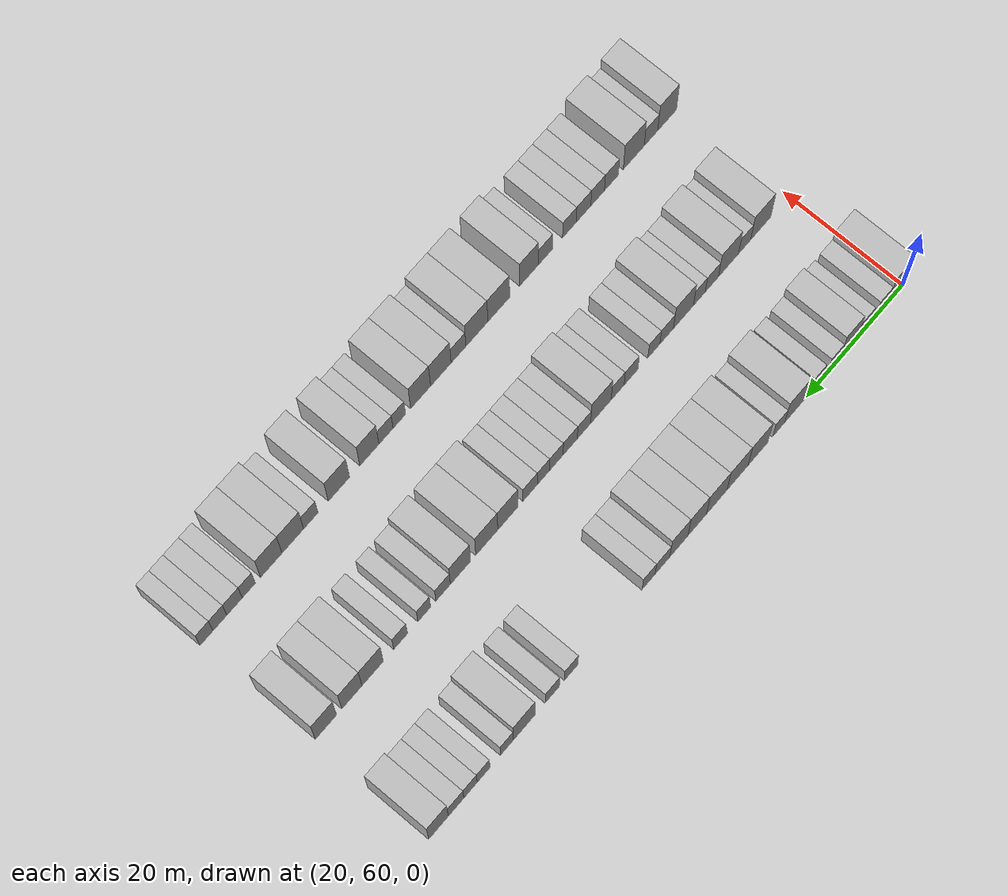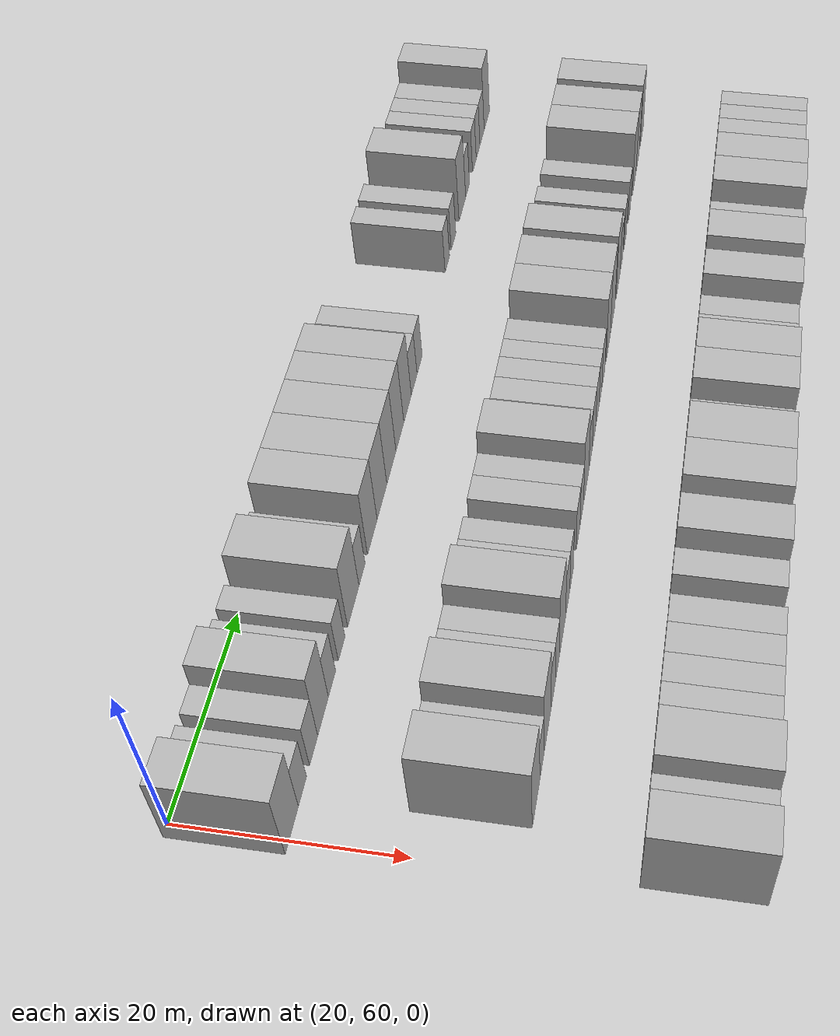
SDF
<sdf version="1.6">
 <world name="default">
  <model name="building_92">
   <static>1</static>
   <pose>25.0000 60.9548 0 0.000000 0.000000 0.000000</pose>
   <link name="link">
    <pose>0 0 4.50 0 0 0</pose>
    <collision name="collision"><geometry><box><size>10.0000 4.0776 9.0000</size></box></geometry></collision>
    <visual name="visual">
     <cast_shadows>0</cast_shadows>
     <geometry><box><size>10.0000 4.0776 9.0000</size></box></geometry>
     <material>
      <script>
       <uri>model://HANNAS_wall/materials/scripts</uri>
       <uri>model://HANNAS_wall/materials/textures</uri>
       <name>vrc/HANNAS_wall</name>
      </script>
     </material>
    </visual>
   </link>
  </model>
  <model name="building_93">
   <static>1</static>
   <pose>25.0000 64.3066 0 0.000000 0.000000 0.000000</pose>
   <link name="link">
    <pose>0 0 3.00 0 0 0</pose>
    <collision name="collision"><geometry><box><size>10.0000 2.6260 6.0000</size></box></geometry></collision>
    <visual name="visual">
     <cast_shadows>0</cast_shadows>
     <geometry><box><size>10.0000 2.6260 6.0000</size></box></geometry>
     <material>
      <script>
       <uri>model://HANNAS_wall/materials/scripts</uri>
       <uri>model://HANNAS_wall/materials/textures</uri>
       <name>vrc/HANNAS_wall</name>
      </script>
     </material>
    </visual>
   </link>
  </model>
  <model name="building_94">
   <static>1</static>
   <pose>25.0000 67.9862 0 0.000000 0.000000 0.000000</pose>
   <link name="link">
    <pose>0 0 3.00 0 0 0</pose>
    <collision name="collision"><geometry><box><size>10.0000 2.7333 6.0000</size></box></geometry></collision>
    <visual name="visual">
     <cast_shadows>0</cast_shadows>
     <geometry><box><size>10.0000 2.7333 6.0000</size></box></geometry>
     <material>
      <script>
       <uri>model://HANNAS_wall/materials/scripts</uri>
       <uri>model://HANNAS_wall/materials/textures</uri>
       <name>vrc/HANNAS_wall</name>
      </script>
     </material>
    </visual>
   </link>
  </model>
  <model name="building_95">
   <static>1</static>
   <pose>25.0000 71.1924 0 0.000000 0.000000 0.000000</pose>
   <link name="link">
    <pose>0 0 4.50 0 0 0</pose>
    <collision name="collision"><geometry><box><size>10.0000 3.6791 9.0000</size></box></geometry></collision>
    <visual name="visual">
     <cast_shadows>0</cast_shadows>
     <geometry><box><size>10.0000 3.6791 9.0000</size></box></geometry>
     <material>
      <script>
       <uri>model://HANNAS_wall/materials/scripts</uri>
       <uri>model://HANNAS_wall/materials/textures</uri>
       <name>vrc/HANNAS_wall</name>
      </script>
     </material>
    </visual>
   </link>
  </model>
  <model name="building_96">
   <static>1</static>
   <pose>25.0000 74.3214 0 0.000000 0.000000 0.000000</pose>
   <link name="link">
    <pose>0 0 3.00 0 0 0</pose>
    <collision name="collision"><geometry><box><size>10.0000 2.5788 6.0000</size></box></geometry></collision>
    <visual name="visual">
     <cast_shadows>0</cast_shadows>
     <geometry><box><size>10.0000 2.5788 6.0000</size></box></geometry>
     <material>
      <script>
       <uri>model://HANNAS_wall/materials/scripts</uri>
       <uri>model://HANNAS_wall/materials/textures</uri>
       <name>vrc/HANNAS_wall</name>
      </script>
     </material>
    </visual>
   </link>
  </model>
  <model name="building_97">
   <static>1</static>
   <pose>25.0000 77.8457 0 0.000000 0.000000 0.000000</pose>
   <link name="link">
    <pose>0 0 3.00 0 0 0</pose>
    <collision name="collision"><geometry><box><size>10.0000 2.4698 6.0000</size></box></geometry></collision>
    <visual name="visual">
     <cast_shadows>0</cast_shadows>
     <geometry><box><size>10.0000 2.4698 6.0000</size></box></geometry>
     <material>
      <script>
       <uri>model://HANNAS_wall/materials/scripts</uri>
       <uri>model://HANNAS_wall/materials/textures</uri>
       <name>vrc/HANNAS_wall</name>
      </script>
     </material>
    </visual>
   </link>
  </model>
  <model name="building_98">
   <static>1</static>
   <pose>25.0000 82.2850 0 0.000000 0.000000 0.000000</pose>
   <link name="link">
    <pose>0 0 4.50 0 0 0</pose>
    <collision name="collision"><geometry><box><size>10.0000 4.4087 9.0000</size></box></geometry></collision>
    <visual name="visual">
     <cast_shadows>0</cast_shadows>
     <geometry><box><size>10.0000 4.4087 9.0000</size></box></geometry>
     <material>
      <script>
       <uri>model://HANNAS_wall/materials/scripts</uri>
       <uri>model://HANNAS_wall/materials/textures</uri>
       <name>vrc/HANNAS_wall</name>
      </script>
     </material>
    </visual>
   </link>
  </model>
  <model name="building_99">
   <static>1</static>
   <pose>25.0000 85.7219 0 0.000000 0.000000 0.000000</pose>
   <link name="link">
    <pose>0 0 3.00 0 0 0</pose>
    <collision name="collision"><geometry><box><size>10.0000 2.4652 6.0000</size></box></geometry></collision>
    <visual name="visual">
     <cast_shadows>0</cast_shadows>
     <geometry><box><size>10.0000 2.4652 6.0000</size></box></geometry>
     <material>
      <script>
       <uri>model://HANNAS_wall/materials/scripts</uri>
       <uri>model://HANNAS_wall/materials/textures</uri>
       <name>vrc/HANNAS_wall</name>
      </script>
     </material>
    </visual>
   </link>
  </model>
  <model name="building_100">
   <static>1</static>
   <pose>25.0000 89.9709 0 0.000000 0.000000 0.000000</pose>
   <link name="link">
    <pose>0 0 4.50 0 0 0</pose>
    <collision name="collision"><geometry><box><size>10.0000 4.0329 9.0000</size></box></geometry></collision>
    <visual name="visual">
     <cast_shadows>0</cast_shadows>
     <geometry><box><size>10.0000 4.0329 9.0000</size></box></geometry>
     <material>
      <script>
       <uri>model://HANNAS_wall/materials/scripts</uri>
       <uri>model://HANNAS_wall/materials/textures</uri>
       <name>vrc/HANNAS_wall</name>
      </script>
     </material>
    </visual>
   </link>
  </model>
  <model name="building_101">
   <static>1</static>
   <pose>25.0000 94.1253 0 0.000000 0.000000 0.000000</pose>
   <link name="link">
    <pose>0 0 4.50 0 0 0</pose>
    <collision name="collision"><geometry><box><size>10.0000 4.2759 9.0000</size></box></geometry></collision>
    <visual name="visual">
     <cast_shadows>0</cast_shadows>
     <geometry><box><size>10.0000 4.2759 9.0000</size></box></geometry>
     <material>
      <script>
       <uri>model://HANNAS_wall/materials/scripts</uri>
       <uri>model://HANNAS_wall/materials/textures</uri>
       <name>vrc/HANNAS_wall</name>
      </script>
     </material>
    </visual>
   </link>
  </model>
  <model name="building_102">
   <static>1</static>
   <pose>25.0000 98.3312 0 0.000000 0.000000 0.000000</pose>
   <link name="link">
    <pose>0 0 4.50 0 0 0</pose>
    <collision name="collision"><geometry><box><size>10.0000 4.1359 9.0000</size></box></geometry></collision>
    <visual name="visual">
     <cast_shadows>0</cast_shadows>
     <geometry><box><size>10.0000 4.1359 9.0000</size></box></geometry>
     <material>
      <script>
       <uri>model://HANNAS_wall/materials/scripts</uri>
       <uri>model://HANNAS_wall/materials/textures</uri>
       <name>vrc/HANNAS_wall</name>
      </script>
     </material>
    </visual>
   </link>
  </model>
  <model name="building_103">
   <static>1</static>
   <pose>25.0000 102.2628 0 0.000000 0.000000 0.000000</pose>
   <link name="link">
    <pose>0 0 4.50 0 0 0</pose>
    <collision name="collision"><geometry><box><size>10.0000 3.7273 9.0000</size></box></geometry></collision>
    <visual name="visual">
     <cast_shadows>0</cast_shadows>
     <geometry><box><size>10.0000 3.7273 9.0000</size></box></geometry>
     <material>
      <script>
       <uri>model://HANNAS_wall/materials/scripts</uri>
       <uri>model://HANNAS_wall/materials/textures</uri>
       <name>vrc/HANNAS_wall</name>
      </script>
     </material>
    </visual>
   </link>
  </model>
  <model name="building_104">
   <static>1</static>
   <pose>25.0000 105.9567 0 0.000000 0.000000 0.000000</pose>
   <link name="link">
    <pose>0 0 4.50 0 0 0</pose>
    <collision name="collision"><geometry><box><size>10.0000 3.6606 9.0000</size></box></geometry></collision>
    <visual name="visual">
     <cast_shadows>0</cast_shadows>
     <geometry><box><size>10.0000 3.6606 9.0000</size></box></geometry>
     <material>
      <script>
       <uri>model://HANNAS_wall/materials/scripts</uri>
       <uri>model://HANNAS_wall/materials/textures</uri>
       <name>vrc/HANNAS_wall</name>
      </script>
     </material>
    </visual>
   </link>
  </model>
  <model name="building_105">
   <static>1</static>
   <pose>25.0000 109.2327 0 0.000000 0.000000 0.000000</pose>
   <link name="link">
    <pose>0 0 3.00 0 0 0</pose>
    <collision name="collision"><geometry><box><size>10.0000 2.8913 6.0000</size></box></geometry></collision>
    <visual name="visual">
     <cast_shadows>0</cast_shadows>
     <geometry><box><size>10.0000 2.8913 6.0000</size></box></geometry>
     <material>
      <script>
       <uri>model://HANNAS_wall/materials/scripts</uri>
       <uri>model://HANNAS_wall/materials/textures</uri>
       <name>vrc/HANNAS_wall</name>
      </script>
     </material>
    </visual>
   </link>
  </model>
  <model name="building_106">
   <static>1</static>
   <pose>25.0000 111.9802 0 0.000000 0.000000 0.000000</pose>
   <link name="link">
    <pose>0 0 3.00 0 0 0</pose>
    <collision name="collision"><geometry><box><size>10.0000 2.6038 6.0000</size></box></geometry></collision>
    <visual name="visual">
     <cast_shadows>0</cast_shadows>
     <geometry><box><size>10.0000 2.6038 6.0000</size></box></geometry>
     <material>
      <script>
       <uri>model://HANNAS_wall/materials/scripts</uri>
       <uri>model://HANNAS_wall/materials/textures</uri>
       <name>vrc/HANNAS_wall</name>
      </script>
     </material>
    </visual>
   </link>
  </model>
  <model name="building_107">
   <static>1</static>
   <pose>25.0000 127.2259 0 0.000000 0.000000 0.000000</pose>
   <link name="link">
    <pose>0 0 3.00 0 0 0</pose>
    <collision name="collision"><geometry><box><size>10.0000 2.6292 6.0000</size></box></geometry></collision>
    <visual name="visual">
     <cast_shadows>0</cast_shadows>
     <geometry><box><size>10.0000 2.6292 6.0000</size></box></geometry>
     <material>
      <script>
       <uri>model://HANNAS_wall/materials/scripts</uri>
       <uri>model://HANNAS_wall/materials/textures</uri>
       <name>vrc/HANNAS_wall</name>
      </script>
     </material>
    </visual>
   </link>
  </model>
  <model name="building_108">
   <static>1</static>
   <pose>25.0000 130.9280 0 0.000000 0.000000 0.000000</pose>
   <link name="link">
    <pose>0 0 3.00 0 0 0</pose>
    <collision name="collision"><geometry><box><size>10.0000 2.7750 6.0000</size></box></geometry></collision>
    <visual name="visual">
     <cast_shadows>0</cast_shadows>
     <geometry><box><size>10.0000 2.7750 6.0000</size></box></geometry>
     <material>
      <script>
       <uri>model://HANNAS_wall/materials/scripts</uri>
       <uri>model://HANNAS_wall/materials/textures</uri>
       <name>vrc/HANNAS_wall</name>
      </script>
     </material>
    </visual>
   </link>
  </model>
  <model name="building_109">
   <static>1</static>
   <pose>25.0000 136.4107 0 0.000000 0.000000 0.000000</pose>
   <link name="link">
    <pose>0 0 4.50 0 0 0</pose>
    <collision name="collision"><geometry><box><size>10.0000 4.1905 9.0000</size></box></geometry></collision>
    <visual name="visual">
     <cast_shadows>0</cast_shadows>
     <geometry><box><size>10.0000 4.1905 9.0000</size></box></geometry>
     <material>
      <script>
       <uri>model://HANNAS_wall/materials/scripts</uri>
       <uri>model://HANNAS_wall/materials/textures</uri>
       <name>vrc/HANNAS_wall</name>
      </script>
     </material>
    </visual>
   </link>
  </model>
  <model name="building_110">
   <static>1</static>
   <pose>25.0000 139.7451 0 0.000000 0.000000 0.000000</pose>
   <link name="link">
    <pose>0 0 3.00 0 0 0</pose>
    <collision name="collision"><geometry><box><size>10.0000 2.4782 6.0000</size></box></geometry></collision>
    <visual name="visual">
     <cast_shadows>0</cast_shadows>
     <geometry><box><size>10.0000 2.4782 6.0000</size></box></geometry>
     <material>
      <script>
       <uri>model://HANNAS_wall/materials/scripts</uri>
       <uri>model://HANNAS_wall/materials/textures</uri>
       <name>vrc/HANNAS_wall</name>
      </script>
     </material>
    </visual>
   </link>
  </model>
  <model name="building_111">
   <static>1</static>
   <pose>25.0000 144.2207 0 0.000000 0.000000 0.000000</pose>
   <link name="link">
    <pose>0 0 3.00 0 0 0</pose>
    <collision name="collision"><geometry><box><size>10.0000 2.4729 6.0000</size></box></geometry></collision>
    <visual name="visual">
     <cast_shadows>0</cast_shadows>
     <geometry><box><size>10.0000 2.4729 6.0000</size></box></geometry>
     <material>
      <script>
       <uri>model://HANNAS_wall/materials/scripts</uri>
       <uri>model://HANNAS_wall/materials/textures</uri>
       <name>vrc/HANNAS_wall</name>
      </script>
     </material>
    </visual>
   </link>
  </model>
  <model name="building_112">
   <static>1</static>
   <pose>25.0000 146.7330 0 0.000000 0.000000 0.000000</pose>
   <link name="link">
    <pose>0 0 3.00 0 0 0</pose>
    <collision name="collision"><geometry><box><size>10.0000 2.5518 6.0000</size></box></geometry></collision>
    <visual name="visual">
     <cast_shadows>0</cast_shadows>
     <geometry><box><size>10.0000 2.5518 6.0000</size></box></geometry>
     <material>
      <script>
       <uri>model://HANNAS_wall/materials/scripts</uri>
       <uri>model://HANNAS_wall/materials/textures</uri>
       <name>vrc/HANNAS_wall</name>
      </script>
     </material>
    </visual>
   </link>
  </model>
  <model name="building_113">
   <static>1</static>
   <pose>25.0000 149.4861 0 0.000000 0.000000 0.000000</pose>
   <link name="link">
    <pose>0 0 3.00 0 0 0</pose>
    <collision name="collision"><geometry><box><size>10.0000 2.9543 6.0000</size></box></geometry></collision>
    <visual name="visual">
     <cast_shadows>0</cast_shadows>
     <geometry><box><size>10.0000 2.9543 6.0000</size></box></geometry>
     <material>
      <script>
       <uri>model://HANNAS_wall/materials/scripts</uri>
       <uri>model://HANNAS_wall/materials/textures</uri>
       <name>vrc/HANNAS_wall</name>
      </script>
     </material>
    </visual>
   </link>
  </model>
  <model name="building_114">
   <static>1</static>
   <pose>25.0000 152.8396 0 0.000000 0.000000 0.000000</pose>
   <link name="link">
    <pose>0 0 4.50 0 0 0</pose>
    <collision name="collision"><geometry><box><size>10.0000 3.7527 9.0000</size></box></geometry></collision>
    <visual name="visual">
     <cast_shadows>0</cast_shadows>
     <geometry><box><size>10.0000 3.7527 9.0000</size></box></geometry>
     <material>
      <script>
       <uri>model://HANNAS_wall/materials/scripts</uri>
       <uri>model://HANNAS_wall/materials/textures</uri>
       <name>vrc/HANNAS_wall</name>
      </script>
     </material>
    </visual>
   </link>
  </model>
  <model name="building_256">
   <static>1</static>
   <pose>44.0000 65.9629 0 0.000000 0.000000 0.000000</pose>
   <link name="link">
    <pose>0 0 4.50 0 0 0</pose>
    <collision name="collision"><geometry><box><size>10.0000 4.2181 9.0000</size></box></geometry></collision>
    <visual name="visual">
     <cast_shadows>0</cast_shadows>
     <geometry><box><size>10.0000 4.2181 9.0000</size></box></geometry>
     <material>
      <script>
       <uri>model://HANNAS_wall/materials/scripts</uri>
       <uri>model://HANNAS_wall/materials/textures</uri>
       <name>vrc/HANNAS_wall</name>
      </script>
     </material>
    </visual>
   </link>
  </model>
  <model name="building_257">
   <static>1</static>
   <pose>44.0000 69.3296 0 0.000000 0.000000 0.000000</pose>
   <link name="link">
    <pose>0 0 3.00 0 0 0</pose>
    <collision name="collision"><geometry><box><size>10.0000 2.5151 6.0000</size></box></geometry></collision>
    <visual name="visual">
     <cast_shadows>0</cast_shadows>
     <geometry><box><size>10.0000 2.5151 6.0000</size></box></geometry>
     <material>
      <script>
       <uri>model://HANNAS_wall/materials/scripts</uri>
       <uri>model://HANNAS_wall/materials/textures</uri>
       <name>vrc/HANNAS_wall</name>
      </script>
     </material>
    </visual>
   </link>
  </model>
  <model name="building_258">
   <static>1</static>
   <pose>44.0000 72.6574 0 0.000000 0.000000 0.000000</pose>
   <link name="link">
    <pose>0 0 4.50 0 0 0</pose>
    <collision name="collision"><geometry><box><size>10.0000 4.1405 9.0000</size></box></geometry></collision>
    <visual name="visual">
     <cast_shadows>0</cast_shadows>
     <geometry><box><size>10.0000 4.1405 9.0000</size></box></geometry>
     <material>
      <script>
       <uri>model://HANNAS_wall/materials/scripts</uri>
       <uri>model://HANNAS_wall/materials/textures</uri>
       <name>vrc/HANNAS_wall</name>
      </script>
     </material>
    </visual>
   </link>
  </model>
  <model name="building_259">
   <static>1</static>
   <pose>44.0000 76.0837 0 0.000000 0.000000 0.000000</pose>
   <link name="link">
    <pose>0 0 3.00 0 0 0</pose>
    <collision name="collision"><geometry><box><size>10.0000 2.7120 6.0000</size></box></geometry></collision>
    <visual name="visual">
     <cast_shadows>0</cast_shadows>
     <geometry><box><size>10.0000 2.7120 6.0000</size></box></geometry>
     <material>
      <script>
       <uri>model://HANNAS_wall/materials/scripts</uri>
       <uri>model://HANNAS_wall/materials/textures</uri>
       <name>vrc/HANNAS_wall</name>
      </script>
     </material>
    </visual>
   </link>
  </model>
  <model name="building_260">
   <static>1</static>
   <pose>44.0000 78.6475 0 0.000000 0.000000 0.000000</pose>
   <link name="link">
    <pose>0 0 3.00 0 0 0</pose>
    <collision name="collision"><geometry><box><size>10.0000 2.4157 6.0000</size></box></geometry></collision>
    <visual name="visual">
     <cast_shadows>0</cast_shadows>
     <geometry><box><size>10.0000 2.4157 6.0000</size></box></geometry>
     <material>
      <script>
       <uri>model://HANNAS_wall/materials/scripts</uri>
       <uri>model://HANNAS_wall/materials/textures</uri>
       <name>vrc/HANNAS_wall</name>
      </script>
     </material>
    </visual>
   </link>
  </model>
  <model name="building_261">
   <static>1</static>
   <pose>44.0000 81.9106 0 0.000000 0.000000 0.000000</pose>
   <link name="link">
    <pose>0 0 4.50 0 0 0</pose>
    <collision name="collision"><geometry><box><size>10.0000 4.1104 9.0000</size></box></geometry></collision>
    <visual name="visual">
     <cast_shadows>0</cast_shadows>
     <geometry><box><size>10.0000 4.1104 9.0000</size></box></geometry>
     <material>
      <script>
       <uri>model://HANNAS_wall/materials/scripts</uri>
       <uri>model://HANNAS_wall/materials/textures</uri>
       <name>vrc/HANNAS_wall</name>
      </script>
     </material>
    </visual>
   </link>
  </model>
  <model name="building_262">
   <static>1</static>
   <pose>44.0000 85.3437 0 0.000000 0.000000 0.000000</pose>
   <link name="link">
    <pose>0 0 3.00 0 0 0</pose>
    <collision name="collision"><geometry><box><size>10.0000 2.7559 6.0000</size></box></geometry></collision>
    <visual name="visual">
     <cast_shadows>0</cast_shadows>
     <geometry><box><size>10.0000 2.7559 6.0000</size></box></geometry>
     <material>
      <script>
       <uri>model://HANNAS_wall/materials/scripts</uri>
       <uri>model://HANNAS_wall/materials/textures</uri>
       <name>vrc/HANNAS_wall</name>
      </script>
     </material>
    </visual>
   </link>
  </model>
  <model name="building_263">
   <static>1</static>
   <pose>44.0000 87.9444 0 0.000000 0.000000 0.000000</pose>
   <link name="link">
    <pose>0 0 3.00 0 0 0</pose>
    <collision name="collision"><geometry><box><size>10.0000 2.4454 6.0000</size></box></geometry></collision>
    <visual name="visual">
     <cast_shadows>0</cast_shadows>
     <geometry><box><size>10.0000 2.4454 6.0000</size></box></geometry>
     <material>
      <script>
       <uri>model://HANNAS_wall/materials/scripts</uri>
       <uri>model://HANNAS_wall/materials/textures</uri>
       <name>vrc/HANNAS_wall</name>
      </script>
     </material>
    </visual>
   </link>
  </model>
  <model name="building_264">
   <static>1</static>
   <pose>44.0000 92.5678 0 0.000000 0.000000 0.000000</pose>
   <link name="link">
    <pose>0 0 3.00 0 0 0</pose>
    <collision name="collision"><geometry><box><size>10.0000 2.8014 6.0000</size></box></geometry></collision>
    <visual name="visual">
     <cast_shadows>0</cast_shadows>
     <geometry><box><size>10.0000 2.8014 6.0000</size></box></geometry>
     <material>
      <script>
       <uri>model://HANNAS_wall/materials/scripts</uri>
       <uri>model://HANNAS_wall/materials/textures</uri>
       <name>vrc/HANNAS_wall</name>
      </script>
     </material>
    </visual>
   </link>
  </model>
  <model name="building_265">
   <static>1</static>
   <pose>44.0000 95.2704 0 0.000000 0.000000 0.000000</pose>
   <link name="link">
    <pose>0 0 3.00 0 0 0</pose>
    <collision name="collision"><geometry><box><size>10.0000 2.6040 6.0000</size></box></geometry></collision>
    <visual name="visual">
     <cast_shadows>0</cast_shadows>
     <geometry><box><size>10.0000 2.6040 6.0000</size></box></geometry>
     <material>
      <script>
       <uri>model://HANNAS_wall/materials/scripts</uri>
       <uri>model://HANNAS_wall/materials/textures</uri>
       <name>vrc/HANNAS_wall</name>
      </script>
     </material>
    </visual>
   </link>
  </model>
  <model name="building_266">
   <static>1</static>
   <pose>44.0000 98.6291 0 0.000000 0.000000 0.000000</pose>
   <link name="link">
    <pose>0 0 4.50 0 0 0</pose>
    <collision name="collision"><geometry><box><size>10.0000 4.1134 9.0000</size></box></geometry></collision>
    <visual name="visual">
     <cast_shadows>0</cast_shadows>
     <geometry><box><size>10.0000 4.1134 9.0000</size></box></geometry>
     <material>
      <script>
       <uri>model://HANNAS_wall/materials/scripts</uri>
       <uri>model://HANNAS_wall/materials/textures</uri>
       <name>vrc/HANNAS_wall</name>
      </script>
     </material>
    </visual>
   </link>
  </model>
  <model name="building_267">
   <static>1</static>
   <pose>44.0000 102.0227 0 0.000000 0.000000 0.000000</pose>
   <link name="link">
    <pose>0 0 3.00 0 0 0</pose>
    <collision name="collision"><geometry><box><size>10.0000 2.6738 6.0000</size></box></geometry></collision>
    <visual name="visual">
     <cast_shadows>0</cast_shadows>
     <geometry><box><size>10.0000 2.6738 6.0000</size></box></geometry>
     <material>
      <script>
       <uri>model://HANNAS_wall/materials/scripts</uri>
       <uri>model://HANNAS_wall/materials/textures</uri>
       <name>vrc/HANNAS_wall</name>
      </script>
     </material>
    </visual>
   </link>
  </model>
  <model name="building_268">
   <static>1</static>
   <pose>44.0000 104.7837 0 0.000000 0.000000 0.000000</pose>
   <link name="link">
    <pose>0 0 3.00 0 0 0</pose>
    <collision name="collision"><geometry><box><size>10.0000 2.8481 6.0000</size></box></geometry></collision>
    <visual name="visual">
     <cast_shadows>0</cast_shadows>
     <geometry><box><size>10.0000 2.8481 6.0000</size></box></geometry>
     <material>
      <script>
       <uri>model://HANNAS_wall/materials/scripts</uri>
       <uri>model://HANNAS_wall/materials/textures</uri>
       <name>vrc/HANNAS_wall</name>
      </script>
     </material>
    </visual>
   </link>
  </model>
  <model name="building_269">
   <static>1</static>
   <pose>44.0000 107.5503 0 0.000000 0.000000 0.000000</pose>
   <link name="link">
    <pose>0 0 3.00 0 0 0</pose>
    <collision name="collision"><geometry><box><size>10.0000 2.6851 6.0000</size></box></geometry></collision>
    <visual name="visual">
     <cast_shadows>0</cast_shadows>
     <geometry><box><size>10.0000 2.6851 6.0000</size></box></geometry>
     <material>
      <script>
       <uri>model://HANNAS_wall/materials/scripts</uri>
       <uri>model://HANNAS_wall/materials/textures</uri>
       <name>vrc/HANNAS_wall</name>
      </script>
     </material>
    </visual>
   </link>
  </model>
  <model name="building_270">
   <static>1</static>
   <pose>44.0000 110.1103 0 0.000000 0.000000 0.000000</pose>
   <link name="link">
    <pose>0 0 3.00 0 0 0</pose>
    <collision name="collision"><geometry><box><size>10.0000 2.4349 6.0000</size></box></geometry></collision>
    <visual name="visual">
     <cast_shadows>0</cast_shadows>
     <geometry><box><size>10.0000 2.4349 6.0000</size></box></geometry>
     <material>
      <script>
       <uri>model://HANNAS_wall/materials/scripts</uri>
       <uri>model://HANNAS_wall/materials/textures</uri>
       <name>vrc/HANNAS_wall</name>
      </script>
     </material>
    </visual>
   </link>
  </model>
  <model name="building_271">
   <static>1</static>
   <pose>44.0000 112.7500 0 0.000000 0.000000 0.000000</pose>
   <link name="link">
    <pose>0 0 3.00 0 0 0</pose>
    <collision name="collision"><geometry><box><size>10.0000 2.8446 6.0000</size></box></geometry></collision>
    <visual name="visual">
     <cast_shadows>0</cast_shadows>
     <geometry><box><size>10.0000 2.8446 6.0000</size></box></geometry>
     <material>
      <script>
       <uri>model://HANNAS_wall/materials/scripts</uri>
       <uri>model://HANNAS_wall/materials/textures</uri>
       <name>vrc/HANNAS_wall</name>
      </script>
     </material>
    </visual>
   </link>
  </model>
  <model name="building_272">
   <static>1</static>
   <pose>44.0000 117.1519 0 0.000000 0.000000 0.000000</pose>
   <link name="link">
    <pose>0 0 4.50 0 0 0</pose>
    <collision name="collision"><geometry><box><size>10.0000 3.9593 9.0000</size></box></geometry></collision>
    <visual name="visual">
     <cast_shadows>0</cast_shadows>
     <geometry><box><size>10.0000 3.9593 9.0000</size></box></geometry>
     <material>
      <script>
       <uri>model://HANNAS_wall/materials/scripts</uri>
       <uri>model://HANNAS_wall/materials/textures</uri>
       <name>vrc/HANNAS_wall</name>
      </script>
     </material>
    </visual>
   </link>
  </model>
  <model name="building_273">
   <static>1</static>
   <pose>44.0000 121.2988 0 0.000000 0.000000 0.000000</pose>
   <link name="link">
    <pose>0 0 4.50 0 0 0</pose>
    <collision name="collision"><geometry><box><size>10.0000 4.3344 9.0000</size></box></geometry></collision>
    <visual name="visual">
     <cast_shadows>0</cast_shadows>
     <geometry><box><size>10.0000 4.3344 9.0000</size></box></geometry>
     <material>
      <script>
       <uri>model://HANNAS_wall/materials/scripts</uri>
       <uri>model://HANNAS_wall/materials/textures</uri>
       <name>vrc/HANNAS_wall</name>
      </script>
     </material>
    </visual>
   </link>
  </model>
  <model name="building_274">
   <static>1</static>
   <pose>44.0000 126.4339 0 0.000000 0.000000 0.000000</pose>
   <link name="link">
    <pose>0 0 4.50 0 0 0</pose>
    <collision name="collision"><geometry><box><size>10.0000 3.9359 9.0000</size></box></geometry></collision>
    <visual name="visual">
     <cast_shadows>0</cast_shadows>
     <geometry><box><size>10.0000 3.9359 9.0000</size></box></geometry>
     <material>
      <script>
       <uri>model://HANNAS_wall/materials/scripts</uri>
       <uri>model://HANNAS_wall/materials/textures</uri>
       <name>vrc/HANNAS_wall</name>
      </script>
     </material>
    </visual>
   </link>
  </model>
  <model name="building_275">
   <static>1</static>
   <pose>44.0000 129.8212 0 0.000000 0.000000 0.000000</pose>
   <link name="link">
    <pose>0 0 3.00 0 0 0</pose>
    <collision name="collision"><geometry><box><size>10.0000 2.8386 6.0000</size></box></geometry></collision>
    <visual name="visual">
     <cast_shadows>0</cast_shadows>
     <geometry><box><size>10.0000 2.8386 6.0000</size></box></geometry>
     <material>
      <script>
       <uri>model://HANNAS_wall/materials/scripts</uri>
       <uri>model://HANNAS_wall/materials/textures</uri>
       <name>vrc/HANNAS_wall</name>
      </script>
     </material>
    </visual>
   </link>
  </model>
  <model name="building_276">
   <static>1</static>
   <pose>44.0000 133.4841 0 0.000000 0.000000 0.000000</pose>
   <link name="link">
    <pose>0 0 3.00 0 0 0</pose>
    <collision name="collision"><geometry><box><size>10.0000 2.4873 6.0000</size></box></geometry></collision>
    <visual name="visual">
     <cast_shadows>0</cast_shadows>
     <geometry><box><size>10.0000 2.4873 6.0000</size></box></geometry>
     <material>
      <script>
       <uri>model://HANNAS_wall/materials/scripts</uri>
       <uri>model://HANNAS_wall/materials/textures</uri>
       <name>vrc/HANNAS_wall</name>
      </script>
     </material>
    </visual>
   </link>
  </model>
  <model name="building_277">
   <static>1</static>
   <pose>44.0000 138.0564 0 0.000000 0.000000 0.000000</pose>
   <link name="link">
    <pose>0 0 3.00 0 0 0</pose>
    <collision name="collision"><geometry><box><size>10.0000 2.6572 6.0000</size></box></geometry></collision>
    <visual name="visual">
     <cast_shadows>0</cast_shadows>
     <geometry><box><size>10.0000 2.6572 6.0000</size></box></geometry>
     <material>
      <script>
       <uri>model://HANNAS_wall/materials/scripts</uri>
       <uri>model://HANNAS_wall/materials/textures</uri>
       <name>vrc/HANNAS_wall</name>
      </script>
     </material>
    </visual>
   </link>
  </model>
  <model name="building_278">
   <static>1</static>
   <pose>44.0000 143.4338 0 0.000000 0.000000 0.000000</pose>
   <link name="link">
    <pose>0 0 4.50 0 0 0</pose>
    <collision name="collision"><geometry><box><size>10.0000 4.0975 9.0000</size></box></geometry></collision>
    <visual name="visual">
     <cast_shadows>0</cast_shadows>
     <geometry><box><size>10.0000 4.0975 9.0000</size></box></geometry>
     <material>
      <script>
       <uri>model://HANNAS_wall/materials/scripts</uri>
       <uri>model://HANNAS_wall/materials/textures</uri>
       <name>vrc/HANNAS_wall</name>
      </script>
     </material>
    </visual>
   </link>
  </model>
  <model name="building_279">
   <static>1</static>
   <pose>44.0000 147.4076 0 0.000000 0.000000 0.000000</pose>
   <link name="link">
    <pose>0 0 4.50 0 0 0</pose>
    <collision name="collision"><geometry><box><size>10.0000 3.8501 9.0000</size></box></geometry></collision>
    <visual name="visual">
     <cast_shadows>0</cast_shadows>
     <geometry><box><size>10.0000 3.8501 9.0000</size></box></geometry>
     <material>
      <script>
       <uri>model://HANNAS_wall/materials/scripts</uri>
       <uri>model://HANNAS_wall/materials/textures</uri>
       <name>vrc/HANNAS_wall</name>
      </script>
     </material>
    </visual>
   </link>
  </model>
  <model name="building_280">
   <static>1</static>
   <pose>44.0000 152.3529 0 0.000000 0.000000 0.000000</pose>
   <link name="link">
    <pose>0 0 4.50 0 0 0</pose>
    <collision name="collision"><geometry><box><size>10.0000 4.0403 9.0000</size></box></geometry></collision>
    <visual name="visual">
     <cast_shadows>0</cast_shadows>
     <geometry><box><size>10.0000 4.0403 9.0000</size></box></geometry>
     <material>
      <script>
       <uri>model://HANNAS_wall/materials/scripts</uri>
       <uri>model://HANNAS_wall/materials/textures</uri>
       <name>vrc/HANNAS_wall</name>
      </script>
     </material>
    </visual>
   </link>
  </model>
  <model name="building_433">
   <static>1</static>
   <pose>63.0000 62.1900 0 0.000000 0.000000 0.000000</pose>
   <link name="link">
    <pose>0 0 4.50 0 0 0</pose>
    <collision name="collision"><geometry><box><size>10.0000 3.8963 9.0000</size></box></geometry></collision>
    <visual name="visual">
     <cast_shadows>0</cast_shadows>
     <geometry><box><size>10.0000 3.8963 9.0000</size></box></geometry>
     <material>
      <script>
       <uri>model://HANNAS_wall/materials/scripts</uri>
       <uri>model://HANNAS_wall/materials/textures</uri>
       <name>vrc/HANNAS_wall</name>
      </script>
     </material>
    </visual>
   </link>
  </model>
  <model name="building_434">
   <static>1</static>
   <pose>63.0000 65.5420 0 0.000000 0.000000 0.000000</pose>
   <link name="link">
    <pose>0 0 3.00 0 0 0</pose>
    <collision name="collision"><geometry><box><size>10.0000 2.8076 6.0000</size></box></geometry></collision>
    <visual name="visual">
     <cast_shadows>0</cast_shadows>
     <geometry><box><size>10.0000 2.8076 6.0000</size></box></geometry>
     <material>
      <script>
       <uri>model://HANNAS_wall/materials/scripts</uri>
       <uri>model://HANNAS_wall/materials/textures</uri>
       <name>vrc/HANNAS_wall</name>
      </script>
     </material>
    </visual>
   </link>
  </model>
  <model name="building_435">
   <static>1</static>
   <pose>63.0000 69.1129 0 0.000000 0.000000 0.000000</pose>
   <link name="link">
    <pose>0 0 4.50 0 0 0</pose>
    <collision name="collision"><geometry><box><size>10.0000 4.3342 9.0000</size></box></geometry></collision>
    <visual name="visual">
     <cast_shadows>0</cast_shadows>
     <geometry><box><size>10.0000 4.3342 9.0000</size></box></geometry>
     <material>
      <script>
       <uri>model://HANNAS_wall/materials/scripts</uri>
       <uri>model://HANNAS_wall/materials/textures</uri>
       <name>vrc/HANNAS_wall</name>
      </script>
     </material>
    </visual>
   </link>
  </model>
  <model name="building_436">
   <static>1</static>
   <pose>63.0000 73.7119 0 0.000000 0.000000 0.000000</pose>
   <link name="link">
    <pose>0 0 3.00 0 0 0</pose>
    <collision name="collision"><geometry><box><size>10.0000 2.8638 6.0000</size></box></geometry></collision>
    <visual name="visual">
     <cast_shadows>0</cast_shadows>
     <geometry><box><size>10.0000 2.8638 6.0000</size></box></geometry>
     <material>
      <script>
       <uri>model://HANNAS_wall/materials/scripts</uri>
       <uri>model://HANNAS_wall/materials/textures</uri>
       <name>vrc/HANNAS_wall</name>
      </script>
     </material>
    </visual>
   </link>
  </model>
  <model name="building_437">
   <static>1</static>
   <pose>63.0000 76.5438 0 0.000000 0.000000 0.000000</pose>
   <link name="link">
    <pose>0 0 3.00 0 0 0</pose>
    <collision name="collision"><geometry><box><size>10.0000 2.8000 6.0000</size></box></geometry></collision>
    <visual name="visual">
     <cast_shadows>0</cast_shadows>
     <geometry><box><size>10.0000 2.8000 6.0000</size></box></geometry>
     <material>
      <script>
       <uri>model://HANNAS_wall/materials/scripts</uri>
       <uri>model://HANNAS_wall/materials/textures</uri>
       <name>vrc/HANNAS_wall</name>
      </script>
     </material>
    </visual>
   </link>
  </model>
  <model name="building_438">
   <static>1</static>
   <pose>63.0000 79.4236 0 0.000000 0.000000 0.000000</pose>
   <link name="link">
    <pose>0 0 3.00 0 0 0</pose>
    <collision name="collision"><geometry><box><size>10.0000 2.9596 6.0000</size></box></geometry></collision>
    <visual name="visual">
     <cast_shadows>0</cast_shadows>
     <geometry><box><size>10.0000 2.9596 6.0000</size></box></geometry>
     <material>
      <script>
       <uri>model://HANNAS_wall/materials/scripts</uri>
       <uri>model://HANNAS_wall/materials/textures</uri>
       <name>vrc/HANNAS_wall</name>
      </script>
     </material>
    </visual>
   </link>
  </model>
  <model name="building_439">
   <static>1</static>
   <pose>63.0000 82.3055 0 0.000000 0.000000 0.000000</pose>
   <link name="link">
    <pose>0 0 3.00 0 0 0</pose>
    <collision name="collision"><geometry><box><size>10.0000 2.8040 6.0000</size></box></geometry></collision>
    <visual name="visual">
     <cast_shadows>0</cast_shadows>
     <geometry><box><size>10.0000 2.8040 6.0000</size></box></geometry>
     <material>
      <script>
       <uri>model://HANNAS_wall/materials/scripts</uri>
       <uri>model://HANNAS_wall/materials/textures</uri>
       <name>vrc/HANNAS_wall</name>
      </script>
     </material>
    </visual>
   </link>
  </model>
  <model name="building_440">
   <static>1</static>
   <pose>63.0000 87.1423 0 0.000000 0.000000 0.000000</pose>
   <link name="link">
    <pose>0 0 3.00 0 0 0</pose>
    <collision name="collision"><geometry><box><size>10.0000 2.8697 6.0000</size></box></geometry></collision>
    <visual name="visual">
     <cast_shadows>0</cast_shadows>
     <geometry><box><size>10.0000 2.8697 6.0000</size></box></geometry>
     <material>
      <script>
       <uri>model://HANNAS_wall/materials/scripts</uri>
       <uri>model://HANNAS_wall/materials/textures</uri>
       <name>vrc/HANNAS_wall</name>
      </script>
     </material>
    </visual>
   </link>
  </model>
  <model name="building_441">
   <static>1</static>
   <pose>63.0000 90.4825 0 0.000000 0.000000 0.000000</pose>
   <link name="link">
    <pose>0 0 4.50 0 0 0</pose>
    <collision name="collision"><geometry><box><size>10.0000 3.8107 9.0000</size></box></geometry></collision>
    <visual name="visual">
     <cast_shadows>0</cast_shadows>
     <geometry><box><size>10.0000 3.8107 9.0000</size></box></geometry>
     <material>
      <script>
       <uri>model://HANNAS_wall/materials/scripts</uri>
       <uri>model://HANNAS_wall/materials/textures</uri>
       <name>vrc/HANNAS_wall</name>
      </script>
     </material>
    </visual>
   </link>
  </model>
  <model name="building_442">
   <static>1</static>
   <pose>63.0000 96.5836 0 0.000000 0.000000 0.000000</pose>
   <link name="link">
    <pose>0 0 4.50 0 0 0</pose>
    <collision name="collision"><geometry><box><size>10.0000 4.3914 9.0000</size></box></geometry></collision>
    <visual name="visual">
     <cast_shadows>0</cast_shadows>
     <geometry><box><size>10.0000 4.3914 9.0000</size></box></geometry>
     <material>
      <script>
       <uri>model://HANNAS_wall/materials/scripts</uri>
       <uri>model://HANNAS_wall/materials/textures</uri>
       <name>vrc/HANNAS_wall</name>
      </script>
     </material>
    </visual>
   </link>
  </model>
  <model name="building_443">
   <static>1</static>
   <pose>63.0000 100.9797 0 0.000000 0.000000 0.000000</pose>
   <link name="link">
    <pose>0 0 4.50 0 0 0</pose>
    <collision name="collision"><geometry><box><size>10.0000 4.4009 9.0000</size></box></geometry></collision>
    <visual name="visual">
     <cast_shadows>0</cast_shadows>
     <geometry><box><size>10.0000 4.4009 9.0000</size></box></geometry>
     <material>
      <script>
       <uri>model://HANNAS_wall/materials/scripts</uri>
       <uri>model://HANNAS_wall/materials/textures</uri>
       <name>vrc/HANNAS_wall</name>
      </script>
     </material>
    </visual>
   </link>
  </model>
  <model name="building_444">
   <static>1</static>
   <pose>63.0000 104.6405 0 0.000000 0.000000 0.000000</pose>
   <link name="link">
    <pose>0 0 3.00 0 0 0</pose>
    <collision name="collision"><geometry><box><size>10.0000 2.9207 6.0000</size></box></geometry></collision>
    <visual name="visual">
     <cast_shadows>0</cast_shadows>
     <geometry><box><size>10.0000 2.9207 6.0000</size></box></geometry>
     <material>
      <script>
       <uri>model://HANNAS_wall/materials/scripts</uri>
       <uri>model://HANNAS_wall/materials/textures</uri>
       <name>vrc/HANNAS_wall</name>
      </script>
     </material>
    </visual>
   </link>
  </model>
  <model name="building_445">
   <static>1</static>
   <pose>63.0000 108.1413 0 0.000000 0.000000 0.000000</pose>
   <link name="link">
    <pose>0 0 4.50 0 0 0</pose>
    <collision name="collision"><geometry><box><size>10.0000 4.0809 9.0000</size></box></geometry></collision>
    <visual name="visual">
     <cast_shadows>0</cast_shadows>
     <geometry><box><size>10.0000 4.0809 9.0000</size></box></geometry>
     <material>
      <script>
       <uri>model://HANNAS_wall/materials/scripts</uri>
       <uri>model://HANNAS_wall/materials/textures</uri>
       <name>vrc/HANNAS_wall</name>
      </script>
     </material>
    </visual>
   </link>
  </model>
  <model name="building_446">
   <static>1</static>
   <pose>63.0000 112.1476 0 0.000000 0.000000 0.000000</pose>
   <link name="link">
    <pose>0 0 4.50 0 0 0</pose>
    <collision name="collision"><geometry><box><size>10.0000 3.9316 9.0000</size></box></geometry></collision>
    <visual name="visual">
     <cast_shadows>0</cast_shadows>
     <geometry><box><size>10.0000 3.9316 9.0000</size></box></geometry>
     <material>
      <script>
       <uri>model://HANNAS_wall/materials/scripts</uri>
       <uri>model://HANNAS_wall/materials/textures</uri>
       <name>vrc/HANNAS_wall</name>
      </script>
     </material>
    </visual>
   </link>
  </model>
  <model name="building_447">
   <static>1</static>
   <pose>63.0000 116.3397 0 0.000000 0.000000 0.000000</pose>
   <link name="link">
    <pose>0 0 3.00 0 0 0</pose>
    <collision name="collision"><geometry><box><size>10.0000 2.4527 6.0000</size></box></geometry></collision>
    <visual name="visual">
     <cast_shadows>0</cast_shadows>
     <geometry><box><size>10.0000 2.4527 6.0000</size></box></geometry>
     <material>
      <script>
       <uri>model://HANNAS_wall/materials/scripts</uri>
       <uri>model://HANNAS_wall/materials/textures</uri>
       <name>vrc/HANNAS_wall</name>
      </script>
     </material>
    </visual>
   </link>
  </model>
  <model name="building_448">
   <static>1</static>
   <pose>63.0000 118.9516 0 0.000000 0.000000 0.000000</pose>
   <link name="link">
    <pose>0 0 3.00 0 0 0</pose>
    <collision name="collision"><geometry><box><size>10.0000 2.7710 6.0000</size></box></geometry></collision>
    <visual name="visual">
     <cast_shadows>0</cast_shadows>
     <geometry><box><size>10.0000 2.7710 6.0000</size></box></geometry>
     <material>
      <script>
       <uri>model://HANNAS_wall/materials/scripts</uri>
       <uri>model://HANNAS_wall/materials/textures</uri>
       <name>vrc/HANNAS_wall</name>
      </script>
     </material>
    </visual>
   </link>
  </model>
  <model name="building_449">
   <static>1</static>
   <pose>63.0000 122.2063 0 0.000000 0.000000 0.000000</pose>
   <link name="link">
    <pose>0 0 4.50 0 0 0</pose>
    <collision name="collision"><geometry><box><size>10.0000 3.7384 9.0000</size></box></geometry></collision>
    <visual name="visual">
     <cast_shadows>0</cast_shadows>
     <geometry><box><size>10.0000 3.7384 9.0000</size></box></geometry>
     <material>
      <script>
       <uri>model://HANNAS_wall/materials/scripts</uri>
       <uri>model://HANNAS_wall/materials/textures</uri>
       <name>vrc/HANNAS_wall</name>
      </script>
     </material>
    </visual>
   </link>
  </model>
  <model name="building_450">
   <static>1</static>
   <pose>63.0000 128.1454 0 0.000000 0.000000 0.000000</pose>
   <link name="link">
    <pose>0 0 4.50 0 0 0</pose>
    <collision name="collision"><geometry><box><size>10.0000 4.1397 9.0000</size></box></geometry></collision>
    <visual name="visual">
     <cast_shadows>0</cast_shadows>
     <geometry><box><size>10.0000 4.1397 9.0000</size></box></geometry>
     <material>
      <script>
       <uri>model://HANNAS_wall/materials/scripts</uri>
       <uri>model://HANNAS_wall/materials/textures</uri>
       <name>vrc/HANNAS_wall</name>
      </script>
     </material>
    </visual>
   </link>
  </model>
  <model name="building_451">
   <static>1</static>
   <pose>63.0000 133.6099 0 0.000000 0.000000 0.000000</pose>
   <link name="link">
    <pose>0 0 3.00 0 0 0</pose>
    <collision name="collision"><geometry><box><size>10.0000 2.7895 6.0000</size></box></geometry></collision>
    <visual name="visual">
     <cast_shadows>0</cast_shadows>
     <geometry><box><size>10.0000 2.7895 6.0000</size></box></geometry>
     <material>
      <script>
       <uri>model://HANNAS_wall/materials/scripts</uri>
       <uri>model://HANNAS_wall/materials/textures</uri>
       <name>vrc/HANNAS_wall</name>
      </script>
     </material>
    </visual>
   </link>
  </model>
  <model name="building_452">
   <static>1</static>
   <pose>63.0000 137.0795 0 0.000000 0.000000 0.000000</pose>
   <link name="link">
    <pose>0 0 4.50 0 0 0</pose>
    <collision name="collision"><geometry><box><size>10.0000 4.1497 9.0000</size></box></geometry></collision>
    <visual name="visual">
     <cast_shadows>0</cast_shadows>
     <geometry><box><size>10.0000 4.1497 9.0000</size></box></geometry>
     <material>
      <script>
       <uri>model://HANNAS_wall/materials/scripts</uri>
       <uri>model://HANNAS_wall/materials/textures</uri>
       <name>vrc/HANNAS_wall</name>
      </script>
     </material>
    </visual>
   </link>
  </model>
  <model name="building_453">
   <static>1</static>
   <pose>63.0000 141.2041 0 0.000000 0.000000 0.000000</pose>
   <link name="link">
    <pose>0 0 4.50 0 0 0</pose>
    <collision name="collision"><geometry><box><size>10.0000 4.0996 9.0000</size></box></geometry></collision>
    <visual name="visual">
     <cast_shadows>0</cast_shadows>
     <geometry><box><size>10.0000 4.0996 9.0000</size></box></geometry>
     <material>
      <script>
       <uri>model://HANNAS_wall/materials/scripts</uri>
       <uri>model://HANNAS_wall/materials/textures</uri>
       <name>vrc/HANNAS_wall</name>
      </script>
     </material>
    </visual>
   </link>
  </model>
  <model name="building_454">
   <static>1</static>
   <pose>63.0000 145.5035 0 0.000000 0.000000 0.000000</pose>
   <link name="link">
    <pose>0 0 3.00 0 0 0</pose>
    <collision name="collision"><geometry><box><size>10.0000 2.4992 6.0000</size></box></geometry></collision>
    <visual name="visual">
     <cast_shadows>0</cast_shadows>
     <geometry><box><size>10.0000 2.4992 6.0000</size></box></geometry>
     <material>
      <script>
       <uri>model://HANNAS_wall/materials/scripts</uri>
       <uri>model://HANNAS_wall/materials/textures</uri>
       <name>vrc/HANNAS_wall</name>
      </script>
     </material>
    </visual>
   </link>
  </model>
  <model name="building_455">
   <static>1</static>
   <pose>63.0000 148.2203 0 0.000000 0.000000 0.000000</pose>
   <link name="link">
    <pose>0 0 3.00 0 0 0</pose>
    <collision name="collision"><geometry><box><size>10.0000 2.9345 6.0000</size></box></geometry></collision>
    <visual name="visual">
     <cast_shadows>0</cast_shadows>
     <geometry><box><size>10.0000 2.9345 6.0000</size></box></geometry>
     <material>
      <script>
       <uri>model://HANNAS_wall/materials/scripts</uri>
       <uri>model://HANNAS_wall/materials/textures</uri>
       <name>vrc/HANNAS_wall</name>
      </script>
     </material>
    </visual>
   </link>
  </model>
  <model name="building_456">
   <static>1</static>
   <pose>63.0000 151.0065 0 0.000000 0.000000 0.000000</pose>
   <link name="link">
    <pose>0 0 3.00 0 0 0</pose>
    <collision name="collision"><geometry><box><size>10.0000 2.6379 6.0000</size></box></geometry></collision>
    <visual name="visual">
     <cast_shadows>0</cast_shadows>
     <geometry><box><size>10.0000 2.6379 6.0000</size></box></geometry>
     <material>
      <script>
       <uri>model://HANNAS_wall/materials/scripts</uri>
       <uri>model://HANNAS_wall/materials/textures</uri>
       <name>vrc/HANNAS_wall</name>
      </script>
     </material>
    </visual>
   </link>
  </model>
  <model name="building_457">
   <static>1</static>
   <pose>63.0000 153.5572 0 0.000000 0.000000 0.000000</pose>
   <link name="link">
    <pose>0 0 3.00 0 0 0</pose>
    <collision name="collision"><geometry><box><size>10.0000 2.4634 6.0000</size></box></geometry></collision>
    <visual name="visual">
     <cast_shadows>0</cast_shadows>
     <geometry><box><size>10.0000 2.4634 6.0000</size></box></geometry>
     <material>
      <script>
       <uri>model://HANNAS_wall/materials/scripts</uri>
       <uri>model://HANNAS_wall/materials/textures</uri>
       <name>vrc/HANNAS_wall</name>
      </script>
     </material>
    </visual>
   </link>
  </model>
 </world>
</sdf>
